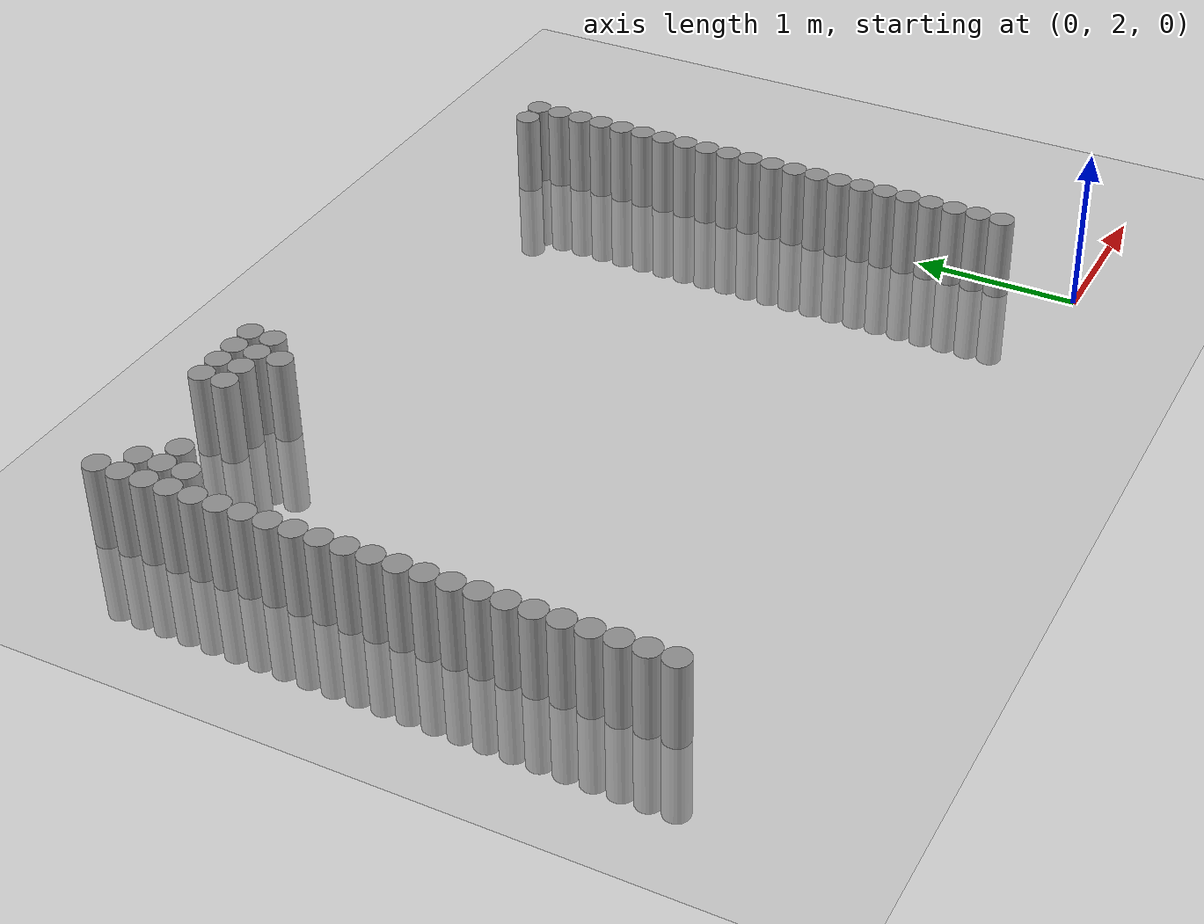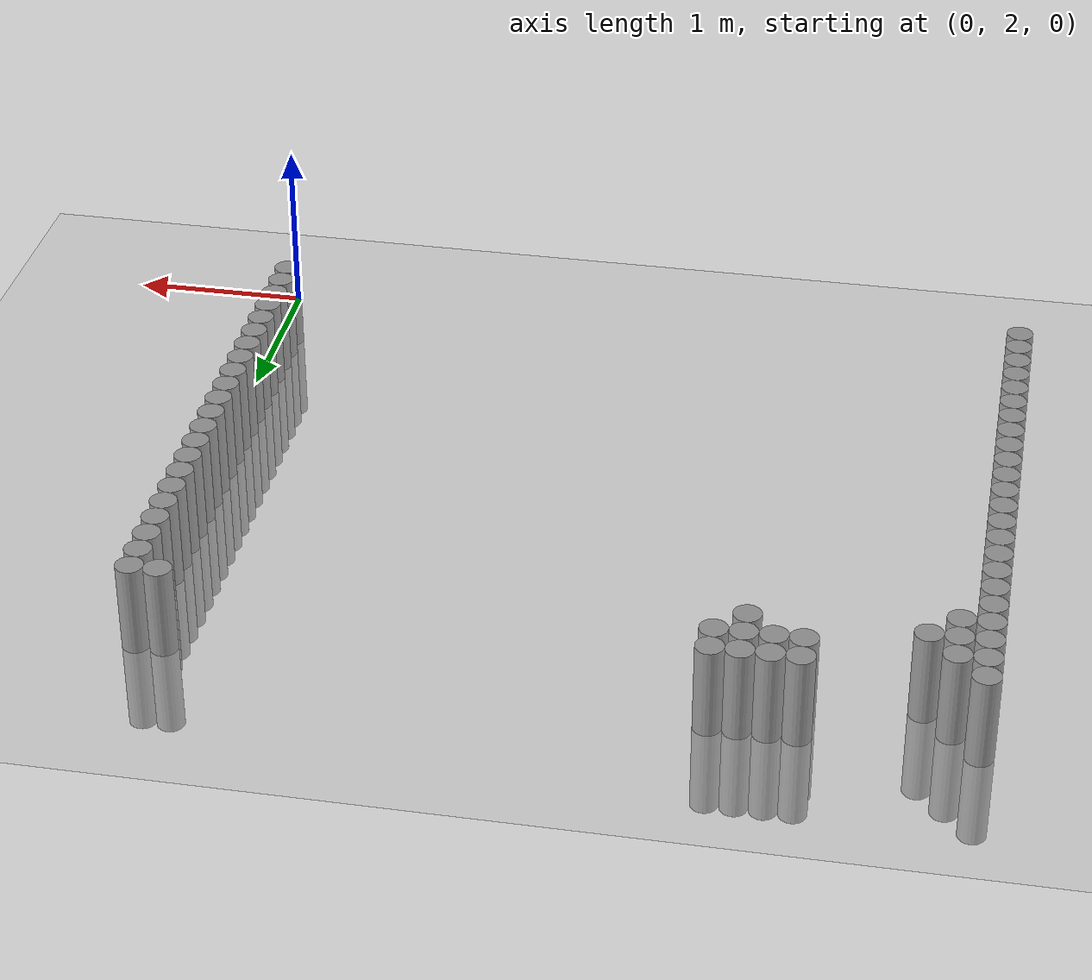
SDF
<sdf version="1.6">
 <world name="default">
  <model name="ground_plane">
   <static>1</static>
   <link name="link">
    <collision name="collision">
     <geometry><plane><normal>0 0 1</normal><size>100 100</size></plane></geometry>
     <surface><friction><ode><mu>1000</mu><mu2>500</mu2></ode></friction></surface>
    </collision>
    <visual name="visual">
     <cast_shadows>0</cast_shadows>
     <geometry><plane><normal>0 0 1</normal><size>100 100</size></plane></geometry>
     <material>
      <script><uri>file://media/materials/scripts/gazebo.material</uri><name>Gazebo/Grey</name></script>
     </material>
    </visual>
   </link>
  </model>
  <model name="unit_cylinder_60">
   <pose>-0.075000 2.475000 0.000000 0.000000 0.000000 0.000000</pose>
   <link name="link">
    <inertial>
     <mass>1</mass>
     <inertia><ixx>0.145833</ixx><ixy>0</ixy><ixz>0</ixz><iyy>0.145833</iyy><iyz>0</iyz><izz>0.125</izz></inertia>
    </inertial>
    <collision name="collision">
     <geometry><cylinder><radius>0.075000</radius><length>1</length></cylinder></geometry>
    </collision>
    <visual name="visual">
     <geometry><cylinder><radius>0.075000</radius><length>1</length></cylinder></geometry>
     <material>
      <script><name>Gazebo/Grey</name><uri>file://media/materials/scripts/gazebo.material</uri></script>
     </material>
    </visual>
   </link>
  </model>
  <model name="unit_cylinder_61">
   <pose>-4.425000 2.475000 0.000000 0.000000 0.000000 0.000000</pose>
   <link name="link">
    <inertial>
     <mass>1</mass>
     <inertia><ixx>0.145833</ixx><ixy>0</ixy><ixz>0</ixz><iyy>0.145833</iyy><iyz>0</iyz><izz>0.125</izz></inertia>
    </inertial>
    <collision name="collision">
     <geometry><cylinder><radius>0.075000</radius><length>1</length></cylinder></geometry>
    </collision>
    <visual name="visual">
     <geometry><cylinder><radius>0.075000</radius><length>1</length></cylinder></geometry>
     <material>
      <script><name>Gazebo/Grey</name><uri>file://media/materials/scripts/gazebo.material</uri></script>
     </material>
    </visual>
   </link>
  </model>
  <model name="unit_cylinder_62">
   <pose>-0.075000 2.625000 0.000000 0.000000 0.000000 0.000000</pose>
   <link name="link">
    <inertial>
     <mass>1</mass>
     <inertia><ixx>0.145833</ixx><ixy>0</ixy><ixz>0</ixz><iyy>0.145833</iyy><iyz>0</iyz><izz>0.125</izz></inertia>
    </inertial>
    <collision name="collision">
     <geometry><cylinder><radius>0.075000</radius><length>1</length></cylinder></geometry>
    </collision>
    <visual name="visual">
     <geometry><cylinder><radius>0.075000</radius><length>1</length></cylinder></geometry>
     <material>
      <script><name>Gazebo/Grey</name><uri>file://media/materials/scripts/gazebo.material</uri></script>
     </material>
    </visual>
   </link>
  </model>
  <model name="unit_cylinder_63">
   <pose>-4.425000 2.625000 0.000000 0.000000 0.000000 0.000000</pose>
   <link name="link">
    <inertial>
     <mass>1</mass>
     <inertia><ixx>0.145833</ixx><ixy>0</ixy><ixz>0</ixz><iyy>0.145833</iyy><iyz>0</iyz><izz>0.125</izz></inertia>
    </inertial>
    <collision name="collision">
     <geometry><cylinder><radius>0.075000</radius><length>1</length></cylinder></geometry>
    </collision>
    <visual name="visual">
     <geometry><cylinder><radius>0.075000</radius><length>1</length></cylinder></geometry>
     <material>
      <script><name>Gazebo/Grey</name><uri>file://media/materials/scripts/gazebo.material</uri></script>
     </material>
    </visual>
   </link>
  </model>
  <model name="unit_cylinder_64">
   <pose>-0.075000 2.775000 0.000000 0.000000 0.000000 0.000000</pose>
   <link name="link">
    <inertial>
     <mass>1</mass>
     <inertia><ixx>0.145833</ixx><ixy>0</ixy><ixz>0</ixz><iyy>0.145833</iyy><iyz>0</iyz><izz>0.125</izz></inertia>
    </inertial>
    <collision name="collision">
     <geometry><cylinder><radius>0.075000</radius><length>1</length></cylinder></geometry>
    </collision>
    <visual name="visual">
     <geometry><cylinder><radius>0.075000</radius><length>1</length></cylinder></geometry>
     <material>
      <script><name>Gazebo/Grey</name><uri>file://media/materials/scripts/gazebo.material</uri></script>
     </material>
    </visual>
   </link>
  </model>
  <model name="unit_cylinder_65">
   <pose>-4.425000 2.775000 0.000000 0.000000 0.000000 0.000000</pose>
   <link name="link">
    <inertial>
     <mass>1</mass>
     <inertia><ixx>0.145833</ixx><ixy>0</ixy><ixz>0</ixz><iyy>0.145833</iyy><iyz>0</iyz><izz>0.125</izz></inertia>
    </inertial>
    <collision name="collision">
     <geometry><cylinder><radius>0.075000</radius><length>1</length></cylinder></geometry>
    </collision>
    <visual name="visual">
     <geometry><cylinder><radius>0.075000</radius><length>1</length></cylinder></geometry>
     <material>
      <script><name>Gazebo/Grey</name><uri>file://media/materials/scripts/gazebo.material</uri></script>
     </material>
    </visual>
   </link>
  </model>
  <model name="unit_cylinder_66">
   <pose>-0.075000 2.925000 0.000000 0.000000 0.000000 0.000000</pose>
   <link name="link">
    <inertial>
     <mass>1</mass>
     <inertia><ixx>0.145833</ixx><ixy>0</ixy><ixz>0</ixz><iyy>0.145833</iyy><iyz>0</iyz><izz>0.125</izz></inertia>
    </inertial>
    <collision name="collision">
     <geometry><cylinder><radius>0.075000</radius><length>1</length></cylinder></geometry>
    </collision>
    <visual name="visual">
     <geometry><cylinder><radius>0.075000</radius><length>1</length></cylinder></geometry>
     <material>
      <script><name>Gazebo/Grey</name><uri>file://media/materials/scripts/gazebo.material</uri></script>
     </material>
    </visual>
   </link>
  </model>
  <model name="unit_cylinder_67">
   <pose>-4.425000 2.925000 0.000000 0.000000 0.000000 0.000000</pose>
   <link name="link">
    <inertial>
     <mass>1</mass>
     <inertia><ixx>0.145833</ixx><ixy>0</ixy><ixz>0</ixz><iyy>0.145833</iyy><iyz>0</iyz><izz>0.125</izz></inertia>
    </inertial>
    <collision name="collision">
     <geometry><cylinder><radius>0.075000</radius><length>1</length></cylinder></geometry>
    </collision>
    <visual name="visual">
     <geometry><cylinder><radius>0.075000</radius><length>1</length></cylinder></geometry>
     <material>
      <script><name>Gazebo/Grey</name><uri>file://media/materials/scripts/gazebo.material</uri></script>
     </material>
    </visual>
   </link>
  </model>
  <model name="unit_cylinder_68">
   <pose>-0.075000 3.075000 0.000000 0.000000 0.000000 0.000000</pose>
   <link name="link">
    <inertial>
     <mass>1</mass>
     <inertia><ixx>0.145833</ixx><ixy>0</ixy><ixz>0</ixz><iyy>0.145833</iyy><iyz>0</iyz><izz>0.125</izz></inertia>
    </inertial>
    <collision name="collision">
     <geometry><cylinder><radius>0.075000</radius><length>1</length></cylinder></geometry>
    </collision>
    <visual name="visual">
     <geometry><cylinder><radius>0.075000</radius><length>1</length></cylinder></geometry>
     <material>
      <script><name>Gazebo/Grey</name><uri>file://media/materials/scripts/gazebo.material</uri></script>
     </material>
    </visual>
   </link>
  </model>
  <model name="unit_cylinder_69">
   <pose>-4.425000 3.075000 0.000000 0.000000 0.000000 0.000000</pose>
   <link name="link">
    <inertial>
     <mass>1</mass>
     <inertia><ixx>0.145833</ixx><ixy>0</ixy><ixz>0</ixz><iyy>0.145833</iyy><iyz>0</iyz><izz>0.125</izz></inertia>
    </inertial>
    <collision name="collision">
     <geometry><cylinder><radius>0.075000</radius><length>1</length></cylinder></geometry>
    </collision>
    <visual name="visual">
     <geometry><cylinder><radius>0.075000</radius><length>1</length></cylinder></geometry>
     <material>
      <script><name>Gazebo/Grey</name><uri>file://media/materials/scripts/gazebo.material</uri></script>
     </material>
    </visual>
   </link>
  </model>
  <model name="unit_cylinder_70">
   <pose>-0.075000 3.225000 0.000000 0.000000 0.000000 0.000000</pose>
   <link name="link">
    <inertial>
     <mass>1</mass>
     <inertia><ixx>0.145833</ixx><ixy>0</ixy><ixz>0</ixz><iyy>0.145833</iyy><iyz>0</iyz><izz>0.125</izz></inertia>
    </inertial>
    <collision name="collision">
     <geometry><cylinder><radius>0.075000</radius><length>1</length></cylinder></geometry>
    </collision>
    <visual name="visual">
     <geometry><cylinder><radius>0.075000</radius><length>1</length></cylinder></geometry>
     <material>
      <script><name>Gazebo/Grey</name><uri>file://media/materials/scripts/gazebo.material</uri></script>
     </material>
    </visual>
   </link>
  </model>
  <model name="unit_cylinder_71">
   <pose>-4.425000 3.225000 0.000000 0.000000 0.000000 0.000000</pose>
   <link name="link">
    <inertial>
     <mass>1</mass>
     <inertia><ixx>0.145833</ixx><ixy>0</ixy><ixz>0</ixz><iyy>0.145833</iyy><iyz>0</iyz><izz>0.125</izz></inertia>
    </inertial>
    <collision name="collision">
     <geometry><cylinder><radius>0.075000</radius><length>1</length></cylinder></geometry>
    </collision>
    <visual name="visual">
     <geometry><cylinder><radius>0.075000</radius><length>1</length></cylinder></geometry>
     <material>
      <script><name>Gazebo/Grey</name><uri>file://media/materials/scripts/gazebo.material</uri></script>
     </material>
    </visual>
   </link>
  </model>
  <model name="unit_cylinder_72">
   <pose>-0.075000 3.375000 0.000000 0.000000 0.000000 0.000000</pose>
   <link name="link">
    <inertial>
     <mass>1</mass>
     <inertia><ixx>0.145833</ixx><ixy>0</ixy><ixz>0</ixz><iyy>0.145833</iyy><iyz>0</iyz><izz>0.125</izz></inertia>
    </inertial>
    <collision name="collision">
     <geometry><cylinder><radius>0.075000</radius><length>1</length></cylinder></geometry>
    </collision>
    <visual name="visual">
     <geometry><cylinder><radius>0.075000</radius><length>1</length></cylinder></geometry>
     <material>
      <script><name>Gazebo/Grey</name><uri>file://media/materials/scripts/gazebo.material</uri></script>
     </material>
    </visual>
   </link>
  </model>
  <model name="unit_cylinder_73">
   <pose>-4.425000 3.375000 0.000000 0.000000 0.000000 0.000000</pose>
   <link name="link">
    <inertial>
     <mass>1</mass>
     <inertia><ixx>0.145833</ixx><ixy>0</ixy><ixz>0</ixz><iyy>0.145833</iyy><iyz>0</iyz><izz>0.125</izz></inertia>
    </inertial>
    <collision name="collision">
     <geometry><cylinder><radius>0.075000</radius><length>1</length></cylinder></geometry>
    </collision>
    <visual name="visual">
     <geometry><cylinder><radius>0.075000</radius><length>1</length></cylinder></geometry>
     <material>
      <script><name>Gazebo/Grey</name><uri>file://media/materials/scripts/gazebo.material</uri></script>
     </material>
    </visual>
   </link>
  </model>
  <model name="unit_cylinder_74">
   <pose>-0.075000 3.525000 0.000000 0.000000 0.000000 0.000000</pose>
   <link name="link">
    <inertial>
     <mass>1</mass>
     <inertia><ixx>0.145833</ixx><ixy>0</ixy><ixz>0</ixz><iyy>0.145833</iyy><iyz>0</iyz><izz>0.125</izz></inertia>
    </inertial>
    <collision name="collision">
     <geometry><cylinder><radius>0.075000</radius><length>1</length></cylinder></geometry>
    </collision>
    <visual name="visual">
     <geometry><cylinder><radius>0.075000</radius><length>1</length></cylinder></geometry>
     <material>
      <script><name>Gazebo/Grey</name><uri>file://media/materials/scripts/gazebo.material</uri></script>
     </material>
    </visual>
   </link>
  </model>
  <model name="unit_cylinder_75">
   <pose>-4.425000 3.525000 0.000000 0.000000 0.000000 0.000000</pose>
   <link name="link">
    <inertial>
     <mass>1</mass>
     <inertia><ixx>0.145833</ixx><ixy>0</ixy><ixz>0</ixz><iyy>0.145833</iyy><iyz>0</iyz><izz>0.125</izz></inertia>
    </inertial>
    <collision name="collision">
     <geometry><cylinder><radius>0.075000</radius><length>1</length></cylinder></geometry>
    </collision>
    <visual name="visual">
     <geometry><cylinder><radius>0.075000</radius><length>1</length></cylinder></geometry>
     <material>
      <script><name>Gazebo/Grey</name><uri>file://media/materials/scripts/gazebo.material</uri></script>
     </material>
    </visual>
   </link>
  </model>
  <model name="unit_cylinder_76">
   <pose>-0.075000 3.675000 0.000000 0.000000 0.000000 0.000000</pose>
   <link name="link">
    <inertial>
     <mass>1</mass>
     <inertia><ixx>0.145833</ixx><ixy>0</ixy><ixz>0</ixz><iyy>0.145833</iyy><iyz>0</iyz><izz>0.125</izz></inertia>
    </inertial>
    <collision name="collision">
     <geometry><cylinder><radius>0.075000</radius><length>1</length></cylinder></geometry>
    </collision>
    <visual name="visual">
     <geometry><cylinder><radius>0.075000</radius><length>1</length></cylinder></geometry>
     <material>
      <script><name>Gazebo/Grey</name><uri>file://media/materials/scripts/gazebo.material</uri></script>
     </material>
    </visual>
   </link>
  </model>
  <model name="unit_cylinder_77">
   <pose>-4.425000 3.675000 0.000000 0.000000 0.000000 0.000000</pose>
   <link name="link">
    <inertial>
     <mass>1</mass>
     <inertia><ixx>0.145833</ixx><ixy>0</ixy><ixz>0</ixz><iyy>0.145833</iyy><iyz>0</iyz><izz>0.125</izz></inertia>
    </inertial>
    <collision name="collision">
     <geometry><cylinder><radius>0.075000</radius><length>1</length></cylinder></geometry>
    </collision>
    <visual name="visual">
     <geometry><cylinder><radius>0.075000</radius><length>1</length></cylinder></geometry>
     <material>
      <script><name>Gazebo/Grey</name><uri>file://media/materials/scripts/gazebo.material</uri></script>
     </material>
    </visual>
   </link>
  </model>
  <model name="unit_cylinder_78">
   <pose>-0.075000 3.825000 0.000000 0.000000 0.000000 0.000000</pose>
   <link name="link">
    <inertial>
     <mass>1</mass>
     <inertia><ixx>0.145833</ixx><ixy>0</ixy><ixz>0</ixz><iyy>0.145833</iyy><iyz>0</iyz><izz>0.125</izz></inertia>
    </inertial>
    <collision name="collision">
     <geometry><cylinder><radius>0.075000</radius><length>1</length></cylinder></geometry>
    </collision>
    <visual name="visual">
     <geometry><cylinder><radius>0.075000</radius><length>1</length></cylinder></geometry>
     <material>
      <script><name>Gazebo/Grey</name><uri>file://media/materials/scripts/gazebo.material</uri></script>
     </material>
    </visual>
   </link>
  </model>
  <model name="unit_cylinder_79">
   <pose>-4.425000 3.825000 0.000000 0.000000 0.000000 0.000000</pose>
   <link name="link">
    <inertial>
     <mass>1</mass>
     <inertia><ixx>0.145833</ixx><ixy>0</ixy><ixz>0</ixz><iyy>0.145833</iyy><iyz>0</iyz><izz>0.125</izz></inertia>
    </inertial>
    <collision name="collision">
     <geometry><cylinder><radius>0.075000</radius><length>1</length></cylinder></geometry>
    </collision>
    <visual name="visual">
     <geometry><cylinder><radius>0.075000</radius><length>1</length></cylinder></geometry>
     <material>
      <script><name>Gazebo/Grey</name><uri>file://media/materials/scripts/gazebo.material</uri></script>
     </material>
    </visual>
   </link>
  </model>
  <model name="unit_cylinder_80">
   <pose>-0.075000 3.975000 0.000000 0.000000 0.000000 0.000000</pose>
   <link name="link">
    <inertial>
     <mass>1</mass>
     <inertia><ixx>0.145833</ixx><ixy>0</ixy><ixz>0</ixz><iyy>0.145833</iyy><iyz>0</iyz><izz>0.125</izz></inertia>
    </inertial>
    <collision name="collision">
     <geometry><cylinder><radius>0.075000</radius><length>1</length></cylinder></geometry>
    </collision>
    <visual name="visual">
     <geometry><cylinder><radius>0.075000</radius><length>1</length></cylinder></geometry>
     <material>
      <script><name>Gazebo/Grey</name><uri>file://media/materials/scripts/gazebo.material</uri></script>
     </material>
    </visual>
   </link>
  </model>
  <model name="unit_cylinder_81">
   <pose>-4.425000 3.975000 0.000000 0.000000 0.000000 0.000000</pose>
   <link name="link">
    <inertial>
     <mass>1</mass>
     <inertia><ixx>0.145833</ixx><ixy>0</ixy><ixz>0</ixz><iyy>0.145833</iyy><iyz>0</iyz><izz>0.125</izz></inertia>
    </inertial>
    <collision name="collision">
     <geometry><cylinder><radius>0.075000</radius><length>1</length></cylinder></geometry>
    </collision>
    <visual name="visual">
     <geometry><cylinder><radius>0.075000</radius><length>1</length></cylinder></geometry>
     <material>
      <script><name>Gazebo/Grey</name><uri>file://media/materials/scripts/gazebo.material</uri></script>
     </material>
    </visual>
   </link>
  </model>
  <model name="unit_cylinder_82">
   <pose>-0.075000 4.125000 0.000000 0.000000 0.000000 0.000000</pose>
   <link name="link">
    <inertial>
     <mass>1</mass>
     <inertia><ixx>0.145833</ixx><ixy>0</ixy><ixz>0</ixz><iyy>0.145833</iyy><iyz>0</iyz><izz>0.125</izz></inertia>
    </inertial>
    <collision name="collision">
     <geometry><cylinder><radius>0.075000</radius><length>1</length></cylinder></geometry>
    </collision>
    <visual name="visual">
     <geometry><cylinder><radius>0.075000</radius><length>1</length></cylinder></geometry>
     <material>
      <script><name>Gazebo/Grey</name><uri>file://media/materials/scripts/gazebo.material</uri></script>
     </material>
    </visual>
   </link>
  </model>
  <model name="unit_cylinder_83">
   <pose>-4.425000 4.125000 0.000000 0.000000 0.000000 0.000000</pose>
   <link name="link">
    <inertial>
     <mass>1</mass>
     <inertia><ixx>0.145833</ixx><ixy>0</ixy><ixz>0</ixz><iyy>0.145833</iyy><iyz>0</iyz><izz>0.125</izz></inertia>
    </inertial>
    <collision name="collision">
     <geometry><cylinder><radius>0.075000</radius><length>1</length></cylinder></geometry>
    </collision>
    <visual name="visual">
     <geometry><cylinder><radius>0.075000</radius><length>1</length></cylinder></geometry>
     <material>
      <script><name>Gazebo/Grey</name><uri>file://media/materials/scripts/gazebo.material</uri></script>
     </material>
    </visual>
   </link>
  </model>
  <model name="unit_cylinder_84">
   <pose>-0.075000 4.275000 0.000000 0.000000 0.000000 0.000000</pose>
   <link name="link">
    <inertial>
     <mass>1</mass>
     <inertia><ixx>0.145833</ixx><ixy>0</ixy><ixz>0</ixz><iyy>0.145833</iyy><iyz>0</iyz><izz>0.125</izz></inertia>
    </inertial>
    <collision name="collision">
     <geometry><cylinder><radius>0.075000</radius><length>1</length></cylinder></geometry>
    </collision>
    <visual name="visual">
     <geometry><cylinder><radius>0.075000</radius><length>1</length></cylinder></geometry>
     <material>
      <script><name>Gazebo/Grey</name><uri>file://media/materials/scripts/gazebo.material</uri></script>
     </material>
    </visual>
   </link>
  </model>
  <model name="unit_cylinder_85">
   <pose>-4.425000 4.275000 0.000000 0.000000 0.000000 0.000000</pose>
   <link name="link">
    <inertial>
     <mass>1</mass>
     <inertia><ixx>0.145833</ixx><ixy>0</ixy><ixz>0</ixz><iyy>0.145833</iyy><iyz>0</iyz><izz>0.125</izz></inertia>
    </inertial>
    <collision name="collision">
     <geometry><cylinder><radius>0.075000</radius><length>1</length></cylinder></geometry>
    </collision>
    <visual name="visual">
     <geometry><cylinder><radius>0.075000</radius><length>1</length></cylinder></geometry>
     <material>
      <script><name>Gazebo/Grey</name><uri>file://media/materials/scripts/gazebo.material</uri></script>
     </material>
    </visual>
   </link>
  </model>
  <model name="unit_cylinder_86">
   <pose>-0.075000 4.425000 0.000000 0.000000 0.000000 0.000000</pose>
   <link name="link">
    <inertial>
     <mass>1</mass>
     <inertia><ixx>0.145833</ixx><ixy>0</ixy><ixz>0</ixz><iyy>0.145833</iyy><iyz>0</iyz><izz>0.125</izz></inertia>
    </inertial>
    <collision name="collision">
     <geometry><cylinder><radius>0.075000</radius><length>1</length></cylinder></geometry>
    </collision>
    <visual name="visual">
     <geometry><cylinder><radius>0.075000</radius><length>1</length></cylinder></geometry>
     <material>
      <script><name>Gazebo/Grey</name><uri>file://media/materials/scripts/gazebo.material</uri></script>
     </material>
    </visual>
   </link>
  </model>
  <model name="unit_cylinder_87">
   <pose>-4.425000 4.425000 0.000000 0.000000 0.000000 0.000000</pose>
   <link name="link">
    <inertial>
     <mass>1</mass>
     <inertia><ixx>0.145833</ixx><ixy>0</ixy><ixz>0</ixz><iyy>0.145833</iyy><iyz>0</iyz><izz>0.125</izz></inertia>
    </inertial>
    <collision name="collision">
     <geometry><cylinder><radius>0.075000</radius><length>1</length></cylinder></geometry>
    </collision>
    <visual name="visual">
     <geometry><cylinder><radius>0.075000</radius><length>1</length></cylinder></geometry>
     <material>
      <script><name>Gazebo/Grey</name><uri>file://media/materials/scripts/gazebo.material</uri></script>
     </material>
    </visual>
   </link>
  </model>
  <model name="unit_cylinder_88">
   <pose>-0.075000 4.575000 0.000000 0.000000 0.000000 0.000000</pose>
   <link name="link">
    <inertial>
     <mass>1</mass>
     <inertia><ixx>0.145833</ixx><ixy>0</ixy><ixz>0</ixz><iyy>0.145833</iyy><iyz>0</iyz><izz>0.125</izz></inertia>
    </inertial>
    <collision name="collision">
     <geometry><cylinder><radius>0.075000</radius><length>1</length></cylinder></geometry>
    </collision>
    <visual name="visual">
     <geometry><cylinder><radius>0.075000</radius><length>1</length></cylinder></geometry>
     <material>
      <script><name>Gazebo/Grey</name><uri>file://media/materials/scripts/gazebo.material</uri></script>
     </material>
    </visual>
   </link>
  </model>
  <model name="unit_cylinder_89">
   <pose>-4.425000 4.575000 0.000000 0.000000 0.000000 0.000000</pose>
   <link name="link">
    <inertial>
     <mass>1</mass>
     <inertia><ixx>0.145833</ixx><ixy>0</ixy><ixz>0</ixz><iyy>0.145833</iyy><iyz>0</iyz><izz>0.125</izz></inertia>
    </inertial>
    <collision name="collision">
     <geometry><cylinder><radius>0.075000</radius><length>1</length></cylinder></geometry>
    </collision>
    <visual name="visual">
     <geometry><cylinder><radius>0.075000</radius><length>1</length></cylinder></geometry>
     <material>
      <script><name>Gazebo/Grey</name><uri>file://media/materials/scripts/gazebo.material</uri></script>
     </material>
    </visual>
   </link>
  </model>
  <model name="unit_cylinder_90">
   <pose>-0.075000 4.725000 0.000000 0.000000 0.000000 0.000000</pose>
   <link name="link">
    <inertial>
     <mass>1</mass>
     <inertia><ixx>0.145833</ixx><ixy>0</ixy><ixz>0</ixz><iyy>0.145833</iyy><iyz>0</iyz><izz>0.125</izz></inertia>
    </inertial>
    <collision name="collision">
     <geometry><cylinder><radius>0.075000</radius><length>1</length></cylinder></geometry>
    </collision>
    <visual name="visual">
     <geometry><cylinder><radius>0.075000</radius><length>1</length></cylinder></geometry>
     <material>
      <script><name>Gazebo/Grey</name><uri>file://media/materials/scripts/gazebo.material</uri></script>
     </material>
    </visual>
   </link>
  </model>
  <model name="unit_cylinder_91">
   <pose>-4.425000 4.725000 0.000000 0.000000 0.000000 0.000000</pose>
   <link name="link">
    <inertial>
     <mass>1</mass>
     <inertia><ixx>0.145833</ixx><ixy>0</ixy><ixz>0</ixz><iyy>0.145833</iyy><iyz>0</iyz><izz>0.125</izz></inertia>
    </inertial>
    <collision name="collision">
     <geometry><cylinder><radius>0.075000</radius><length>1</length></cylinder></geometry>
    </collision>
    <visual name="visual">
     <geometry><cylinder><radius>0.075000</radius><length>1</length></cylinder></geometry>
     <material>
      <script><name>Gazebo/Grey</name><uri>file://media/materials/scripts/gazebo.material</uri></script>
     </material>
    </visual>
   </link>
  </model>
  <model name="unit_cylinder_92">
   <pose>-0.075000 4.875000 0.000000 0.000000 0.000000 0.000000</pose>
   <link name="link">
    <inertial>
     <mass>1</mass>
     <inertia><ixx>0.145833</ixx><ixy>0</ixy><ixz>0</ixz><iyy>0.145833</iyy><iyz>0</iyz><izz>0.125</izz></inertia>
    </inertial>
    <collision name="collision">
     <geometry><cylinder><radius>0.075000</radius><length>1</length></cylinder></geometry>
    </collision>
    <visual name="visual">
     <geometry><cylinder><radius>0.075000</radius><length>1</length></cylinder></geometry>
     <material>
      <script><name>Gazebo/Grey</name><uri>file://media/materials/scripts/gazebo.material</uri></script>
     </material>
    </visual>
   </link>
  </model>
  <model name="unit_cylinder_93">
   <pose>-4.425000 4.875000 0.000000 0.000000 0.000000 0.000000</pose>
   <link name="link">
    <inertial>
     <mass>1</mass>
     <inertia><ixx>0.145833</ixx><ixy>0</ixy><ixz>0</ixz><iyy>0.145833</iyy><iyz>0</iyz><izz>0.125</izz></inertia>
    </inertial>
    <collision name="collision">
     <geometry><cylinder><radius>0.075000</radius><length>1</length></cylinder></geometry>
    </collision>
    <visual name="visual">
     <geometry><cylinder><radius>0.075000</radius><length>1</length></cylinder></geometry>
     <material>
      <script><name>Gazebo/Grey</name><uri>file://media/materials/scripts/gazebo.material</uri></script>
     </material>
    </visual>
   </link>
  </model>
  <model name="unit_cylinder_94">
   <pose>-0.075000 5.025000 0.000000 0.000000 0.000000 0.000000</pose>
   <link name="link">
    <inertial>
     <mass>1</mass>
     <inertia><ixx>0.145833</ixx><ixy>0</ixy><ixz>0</ixz><iyy>0.145833</iyy><iyz>0</iyz><izz>0.125</izz></inertia>
    </inertial>
    <collision name="collision">
     <geometry><cylinder><radius>0.075000</radius><length>1</length></cylinder></geometry>
    </collision>
    <visual name="visual">
     <geometry><cylinder><radius>0.075000</radius><length>1</length></cylinder></geometry>
     <material>
      <script><name>Gazebo/Grey</name><uri>file://media/materials/scripts/gazebo.material</uri></script>
     </material>
    </visual>
   </link>
  </model>
  <model name="unit_cylinder_95">
   <pose>-4.425000 5.025000 0.000000 0.000000 0.000000 0.000000</pose>
   <link name="link">
    <inertial>
     <mass>1</mass>
     <inertia><ixx>0.145833</ixx><ixy>0</ixy><ixz>0</ixz><iyy>0.145833</iyy><iyz>0</iyz><izz>0.125</izz></inertia>
    </inertial>
    <collision name="collision">
     <geometry><cylinder><radius>0.075000</radius><length>1</length></cylinder></geometry>
    </collision>
    <visual name="visual">
     <geometry><cylinder><radius>0.075000</radius><length>1</length></cylinder></geometry>
     <material>
      <script><name>Gazebo/Grey</name><uri>file://media/materials/scripts/gazebo.material</uri></script>
     </material>
    </visual>
   </link>
  </model>
  <model name="unit_cylinder_96">
   <pose>-4.425000 5.175000 0.000000 0.000000 0.000000 0.000000</pose>
   <link name="link">
    <inertial>
     <mass>1</mass>
     <inertia><ixx>0.145833</ixx><ixy>0</ixy><ixz>0</ixz><iyy>0.145833</iyy><iyz>0</iyz><izz>0.125</izz></inertia>
    </inertial>
    <collision name="collision">
     <geometry><cylinder><radius>0.075000</radius><length>1</length></cylinder></geometry>
    </collision>
    <visual name="visual">
     <geometry><cylinder><radius>0.075000</radius><length>1</length></cylinder></geometry>
     <material>
      <script><name>Gazebo/Grey</name><uri>file://media/materials/scripts/gazebo.material</uri></script>
     </material>
    </visual>
   </link>
  </model>
  <model name="unit_cylinder_97">
   <pose>-4.425000 5.325000 0.000000 0.000000 0.000000 0.000000</pose>
   <link name="link">
    <inertial>
     <mass>1</mass>
     <inertia><ixx>0.145833</ixx><ixy>0</ixy><ixz>0</ixz><iyy>0.145833</iyy><iyz>0</iyz><izz>0.125</izz></inertia>
    </inertial>
    <collision name="collision">
     <geometry><cylinder><radius>0.075000</radius><length>1</length></cylinder></geometry>
    </collision>
    <visual name="visual">
     <geometry><cylinder><radius>0.075000</radius><length>1</length></cylinder></geometry>
     <material>
      <script><name>Gazebo/Grey</name><uri>file://media/materials/scripts/gazebo.material</uri></script>
     </material>
    </visual>
   </link>
  </model>
  <model name="unit_cylinder_98">
   <pose>-4.425000 5.475000 0.000000 0.000000 0.000000 0.000000</pose>
   <link name="link">
    <inertial>
     <mass>1</mass>
     <inertia><ixx>0.145833</ixx><ixy>0</ixy><ixz>0</ixz><iyy>0.145833</iyy><iyz>0</iyz><izz>0.125</izz></inertia>
    </inertial>
    <collision name="collision">
     <geometry><cylinder><radius>0.075000</radius><length>1</length></cylinder></geometry>
    </collision>
    <visual name="visual">
     <geometry><cylinder><radius>0.075000</radius><length>1</length></cylinder></geometry>
     <material>
      <script><name>Gazebo/Grey</name><uri>file://media/materials/scripts/gazebo.material</uri></script>
     </material>
    </visual>
   </link>
  </model>
  <model name="unit_cylinder_99">
   <pose>-4.425000 5.625000 0.000000 0.000000 0.000000 0.000000</pose>
   <link name="link">
    <inertial>
     <mass>1</mass>
     <inertia><ixx>0.145833</ixx><ixy>0</ixy><ixz>0</ixz><iyy>0.145833</iyy><iyz>0</iyz><izz>0.125</izz></inertia>
    </inertial>
    <collision name="collision">
     <geometry><cylinder><radius>0.075000</radius><length>1</length></cylinder></geometry>
    </collision>
    <visual name="visual">
     <geometry><cylinder><radius>0.075000</radius><length>1</length></cylinder></geometry>
     <material>
      <script><name>Gazebo/Grey</name><uri>file://media/materials/scripts/gazebo.material</uri></script>
     </material>
    </visual>
   </link>
  </model>
  <model name="unit_cylinder_100">
   <pose>-4.425000 5.775000 0.000000 0.000000 0.000000 0.000000</pose>
   <link name="link">
    <inertial>
     <mass>1</mass>
     <inertia><ixx>0.145833</ixx><ixy>0</ixy><ixz>0</ixz><iyy>0.145833</iyy><iyz>0</iyz><izz>0.125</izz></inertia>
    </inertial>
    <collision name="collision">
     <geometry><cylinder><radius>0.075000</radius><length>1</length></cylinder></geometry>
    </collision>
    <visual name="visual">
     <geometry><cylinder><radius>0.075000</radius><length>1</length></cylinder></geometry>
     <material>
      <script><name>Gazebo/Grey</name><uri>file://media/materials/scripts/gazebo.material</uri></script>
     </material>
    </visual>
   </link>
  </model>
  <model name="unit_cylinder_126">
   <pose>-4.275000 5.325000 0.000000 0.000000 0.000000 0.000000</pose>
   <link name="link">
    <inertial>
     <mass>1</mass>
     <inertia><ixx>0.145833</ixx><ixy>0</ixy><ixz>0</ixz><iyy>0.145833</iyy><iyz>0</iyz><izz>0.125</izz></inertia>
    </inertial>
    <collision name="collision">
     <geometry><cylinder><radius>0.075000</radius><length>1</length></cylinder></geometry>
    </collision>
    <visual name="visual">
     <geometry><cylinder><radius>0.075000</radius><length>1</length></cylinder></geometry>
     <material>
      <script><name>Gazebo/Grey</name><uri>file://media/materials/scripts/gazebo.material</uri></script>
     </material>
    </visual>
   </link>
  </model>
  <model name="unit_cylinder_127">
   <pose>-4.275000 5.475000 0.000000 0.000000 0.000000 0.000000</pose>
   <link name="link">
    <inertial>
     <mass>1</mass>
     <inertia><ixx>0.145833</ixx><ixy>0</ixy><ixz>0</ixz><iyy>0.145833</iyy><iyz>0</iyz><izz>0.125</izz></inertia>
    </inertial>
    <collision name="collision">
     <geometry><cylinder><radius>0.075000</radius><length>1</length></cylinder></geometry>
    </collision>
    <visual name="visual">
     <geometry><cylinder><radius>0.075000</radius><length>1</length></cylinder></geometry>
     <material>
      <script><name>Gazebo/Grey</name><uri>file://media/materials/scripts/gazebo.material</uri></script>
     </material>
    </visual>
   </link>
  </model>
  <model name="unit_cylinder_128">
   <pose>-4.275000 5.625000 0.000000 0.000000 0.000000 0.000000</pose>
   <link name="link">
    <inertial>
     <mass>1</mass>
     <inertia><ixx>0.145833</ixx><ixy>0</ixy><ixz>0</ixz><iyy>0.145833</iyy><iyz>0</iyz><izz>0.125</izz></inertia>
    </inertial>
    <collision name="collision">
     <geometry><cylinder><radius>0.075000</radius><length>1</length></cylinder></geometry>
    </collision>
    <visual name="visual">
     <geometry><cylinder><radius>0.075000</radius><length>1</length></cylinder></geometry>
     <material>
      <script><name>Gazebo/Grey</name><uri>file://media/materials/scripts/gazebo.material</uri></script>
     </material>
    </visual>
   </link>
  </model>
  <model name="unit_cylinder_130">
   <pose>-4.125000 5.475000 0.000000 0.000000 0.000000 0.000000</pose>
   <link name="link">
    <inertial>
     <mass>1</mass>
     <inertia><ixx>0.145833</ixx><ixy>0</ixy><ixz>0</ixz><iyy>0.145833</iyy><iyz>0</iyz><izz>0.125</izz></inertia>
    </inertial>
    <collision name="collision">
     <geometry><cylinder><radius>0.075000</radius><length>1</length></cylinder></geometry>
    </collision>
    <visual name="visual">
     <geometry><cylinder><radius>0.075000</radius><length>1</length></cylinder></geometry>
     <material>
      <script><name>Gazebo/Grey</name><uri>file://media/materials/scripts/gazebo.material</uri></script>
     </material>
    </visual>
   </link>
  </model>
  <model name="unit_cylinder_139">
   <pose>-3.525000 5.625000 0.000000 0.000000 0.000000 0.000000</pose>
   <link name="link">
    <inertial>
     <mass>1</mass>
     <inertia><ixx>0.145833</ixx><ixy>0</ixy><ixz>0</ixz><iyy>0.145833</iyy><iyz>0</iyz><izz>0.125</izz></inertia>
    </inertial>
    <collision name="collision">
     <geometry><cylinder><radius>0.075000</radius><length>1</length></cylinder></geometry>
    </collision>
    <visual name="visual">
     <geometry><cylinder><radius>0.075000</radius><length>1</length></cylinder></geometry>
     <material>
      <script><name>Gazebo/Grey</name><uri>file://media/materials/scripts/gazebo.material</uri></script>
     </material>
    </visual>
   </link>
  </model>
  <model name="unit_cylinder_140">
   <pose>-3.525000 5.775000 0.000000 0.000000 0.000000 0.000000</pose>
   <link name="link">
    <inertial>
     <mass>1</mass>
     <inertia><ixx>0.145833</ixx><ixy>0</ixy><ixz>0</ixz><iyy>0.145833</iyy><iyz>0</iyz><izz>0.125</izz></inertia>
    </inertial>
    <collision name="collision">
     <geometry><cylinder><radius>0.075000</radius><length>1</length></cylinder></geometry>
    </collision>
    <visual name="visual">
     <geometry><cylinder><radius>0.075000</radius><length>1</length></cylinder></geometry>
     <material>
      <script><name>Gazebo/Grey</name><uri>file://media/materials/scripts/gazebo.material</uri></script>
     </material>
    </visual>
   </link>
  </model>
  <model name="unit_cylinder_143">
   <pose>-3.375000 5.625000 0.000000 0.000000 0.000000 0.000000</pose>
   <link name="link">
    <inertial>
     <mass>1</mass>
     <inertia><ixx>0.145833</ixx><ixy>0</ixy><ixz>0</ixz><iyy>0.145833</iyy><iyz>0</iyz><izz>0.125</izz></inertia>
    </inertial>
    <collision name="collision">
     <geometry><cylinder><radius>0.075000</radius><length>1</length></cylinder></geometry>
    </collision>
    <visual name="visual">
     <geometry><cylinder><radius>0.075000</radius><length>1</length></cylinder></geometry>
     <material>
      <script><name>Gazebo/Grey</name><uri>file://media/materials/scripts/gazebo.material</uri></script>
     </material>
    </visual>
   </link>
  </model>
  <model name="unit_cylinder_144">
   <pose>-3.375000 5.775000 0.000000 0.000000 0.000000 0.000000</pose>
   <link name="link">
    <inertial>
     <mass>1</mass>
     <inertia><ixx>0.145833</ixx><ixy>0</ixy><ixz>0</ixz><iyy>0.145833</iyy><iyz>0</iyz><izz>0.125</izz></inertia>
    </inertial>
    <collision name="collision">
     <geometry><cylinder><radius>0.075000</radius><length>1</length></cylinder></geometry>
    </collision>
    <visual name="visual">
     <geometry><cylinder><radius>0.075000</radius><length>1</length></cylinder></geometry>
     <material>
      <script><name>Gazebo/Grey</name><uri>file://media/materials/scripts/gazebo.material</uri></script>
     </material>
    </visual>
   </link>
  </model>
  <model name="unit_cylinder_145">
   <pose>-3.225000 5.475000 0.000000 0.000000 0.000000 0.000000</pose>
   <link name="link">
    <inertial>
     <mass>1</mass>
     <inertia><ixx>0.145833</ixx><ixy>0</ixy><ixz>0</ixz><iyy>0.145833</iyy><iyz>0</iyz><izz>0.125</izz></inertia>
    </inertial>
    <collision name="collision">
     <geometry><cylinder><radius>0.075000</radius><length>1</length></cylinder></geometry>
    </collision>
    <visual name="visual">
     <geometry><cylinder><radius>0.075000</radius><length>1</length></cylinder></geometry>
     <material>
      <script><name>Gazebo/Grey</name><uri>file://media/materials/scripts/gazebo.material</uri></script>
     </material>
    </visual>
   </link>
  </model>
  <model name="unit_cylinder_146">
   <pose>-3.225000 5.625000 0.000000 0.000000 0.000000 0.000000</pose>
   <link name="link">
    <inertial>
     <mass>1</mass>
     <inertia><ixx>0.145833</ixx><ixy>0</ixy><ixz>0</ixz><iyy>0.145833</iyy><iyz>0</iyz><izz>0.125</izz></inertia>
    </inertial>
    <collision name="collision">
     <geometry><cylinder><radius>0.075000</radius><length>1</length></cylinder></geometry>
    </collision>
    <visual name="visual">
     <geometry><cylinder><radius>0.075000</radius><length>1</length></cylinder></geometry>
     <material>
      <script><name>Gazebo/Grey</name><uri>file://media/materials/scripts/gazebo.material</uri></script>
     </material>
    </visual>
   </link>
  </model>
  <model name="unit_cylinder_147">
   <pose>-3.225000 5.775000 0.000000 0.000000 0.000000 0.000000</pose>
   <link name="link">
    <inertial>
     <mass>1</mass>
     <inertia><ixx>0.145833</ixx><ixy>0</ixy><ixz>0</ixz><iyy>0.145833</iyy><iyz>0</iyz><izz>0.125</izz></inertia>
    </inertial>
    <collision name="collision">
     <geometry><cylinder><radius>0.075000</radius><length>1</length></cylinder></geometry>
    </collision>
    <visual name="visual">
     <geometry><cylinder><radius>0.075000</radius><length>1</length></cylinder></geometry>
     <material>
      <script><name>Gazebo/Grey</name><uri>file://media/materials/scripts/gazebo.material</uri></script>
     </material>
    </visual>
   </link>
  </model>
  <model name="unit_cylinder_150">
   <pose>-3.075000 5.625000 0.000000 0.000000 0.000000 0.000000</pose>
   <link name="link">
    <inertial>
     <mass>1</mass>
     <inertia><ixx>0.145833</ixx><ixy>0</ixy><ixz>0</ixz><iyy>0.145833</iyy><iyz>0</iyz><izz>0.125</izz></inertia>
    </inertial>
    <collision name="collision">
     <geometry><cylinder><radius>0.075000</radius><length>1</length></cylinder></geometry>
    </collision>
    <visual name="visual">
     <geometry><cylinder><radius>0.075000</radius><length>1</length></cylinder></geometry>
     <material>
      <script><name>Gazebo/Grey</name><uri>file://media/materials/scripts/gazebo.material</uri></script>
     </material>
    </visual>
   </link>
  </model>
  <model name="unit_cylinder_151">
   <pose>-3.075000 5.775000 0.000000 0.000000 0.000000 0.000000</pose>
   <link name="link">
    <inertial>
     <mass>1</mass>
     <inertia><ixx>0.145833</ixx><ixy>0</ixy><ixz>0</ixz><iyy>0.145833</iyy><iyz>0</iyz><izz>0.125</izz></inertia>
    </inertial>
    <collision name="collision">
     <geometry><cylinder><radius>0.075000</radius><length>1</length></cylinder></geometry>
    </collision>
    <visual name="visual">
     <geometry><cylinder><radius>0.075000</radius><length>1</length></cylinder></geometry>
     <material>
      <script><name>Gazebo/Grey</name><uri>file://media/materials/scripts/gazebo.material</uri></script>
     </material>
    </visual>
   </link>
  </model>
  <model name="unit_cylinder_190">
   <pose>-0.225000 5.625000 0.000000 0.000000 0.000000 0.000000</pose>
   <link name="link">
    <inertial>
     <mass>1</mass>
     <inertia><ixx>0.145833</ixx><ixy>0</ixy><ixz>0</ixz><iyy>0.145833</iyy><iyz>0</iyz><izz>0.125</izz></inertia>
    </inertial>
    <collision name="collision">
     <geometry><cylinder><radius>0.075000</radius><length>1</length></cylinder></geometry>
    </collision>
    <visual name="visual">
     <geometry><cylinder><radius>0.075000</radius><length>1</length></cylinder></geometry>
     <material>
      <script><name>Gazebo/Grey</name><uri>file://media/materials/scripts/gazebo.material</uri></script>
     </material>
    </visual>
   </link>
  </model>
  <model name="unit_cylinder_207">
   <pose>-0.075000 5.175000 0.000000 0.000000 0.000000 0.000000</pose>
   <link name="link">
    <inertial>
     <mass>1</mass>
     <inertia><ixx>0.145833</ixx><ixy>0</ixy><ixz>0</ixz><iyy>0.145833</iyy><iyz>0</iyz><izz>0.125</izz></inertia>
    </inertial>
    <collision name="collision">
     <geometry><cylinder><radius>0.075000</radius><length>1</length></cylinder></geometry>
    </collision>
    <visual name="visual">
     <geometry><cylinder><radius>0.075000</radius><length>1</length></cylinder></geometry>
     <material>
      <script><name>Gazebo/Grey</name><uri>file://media/materials/scripts/gazebo.material</uri></script>
     </material>
    </visual>
   </link>
  </model>
  <model name="unit_cylinder_208">
   <pose>-0.075000 5.325000 0.000000 0.000000 0.000000 0.000000</pose>
   <link name="link">
    <inertial>
     <mass>1</mass>
     <inertia><ixx>0.145833</ixx><ixy>0</ixy><ixz>0</ixz><iyy>0.145833</iyy><iyz>0</iyz><izz>0.125</izz></inertia>
    </inertial>
    <collision name="collision">
     <geometry><cylinder><radius>0.075000</radius><length>1</length></cylinder></geometry>
    </collision>
    <visual name="visual">
     <geometry><cylinder><radius>0.075000</radius><length>1</length></cylinder></geometry>
     <material>
      <script><name>Gazebo/Grey</name><uri>file://media/materials/scripts/gazebo.material</uri></script>
     </material>
    </visual>
   </link>
  </model>
  <model name="unit_cylinder_209">
   <pose>-0.075000 5.475000 0.000000 0.000000 0.000000 0.000000</pose>
   <link name="link">
    <inertial>
     <mass>1</mass>
     <inertia><ixx>0.145833</ixx><ixy>0</ixy><ixz>0</ixz><iyy>0.145833</iyy><iyz>0</iyz><izz>0.125</izz></inertia>
    </inertial>
    <collision name="collision">
     <geometry><cylinder><radius>0.075000</radius><length>1</length></cylinder></geometry>
    </collision>
    <visual name="visual">
     <geometry><cylinder><radius>0.075000</radius><length>1</length></cylinder></geometry>
     <material>
      <script><name>Gazebo/Grey</name><uri>file://media/materials/scripts/gazebo.material</uri></script>
     </material>
    </visual>
   </link>
  </model>
  <model name="unit_cylinder_210">
   <pose>-0.075000 5.625000 0.000000 0.000000 0.000000 0.000000</pose>
   <link name="link">
    <inertial>
     <mass>1</mass>
     <inertia><ixx>0.145833</ixx><ixy>0</ixy><ixz>0</ixz><iyy>0.145833</iyy><iyz>0</iyz><izz>0.125</izz></inertia>
    </inertial>
    <collision name="collision">
     <geometry><cylinder><radius>0.075000</radius><length>1</length></cylinder></geometry>
    </collision>
    <visual name="visual">
     <geometry><cylinder><radius>0.075000</radius><length>1</length></cylinder></geometry>
     <material>
      <script><name>Gazebo/Grey</name><uri>file://media/materials/scripts/gazebo.material</uri></script>
     </material>
    </visual>
   </link>
  </model>
 </world>
</sdf>
